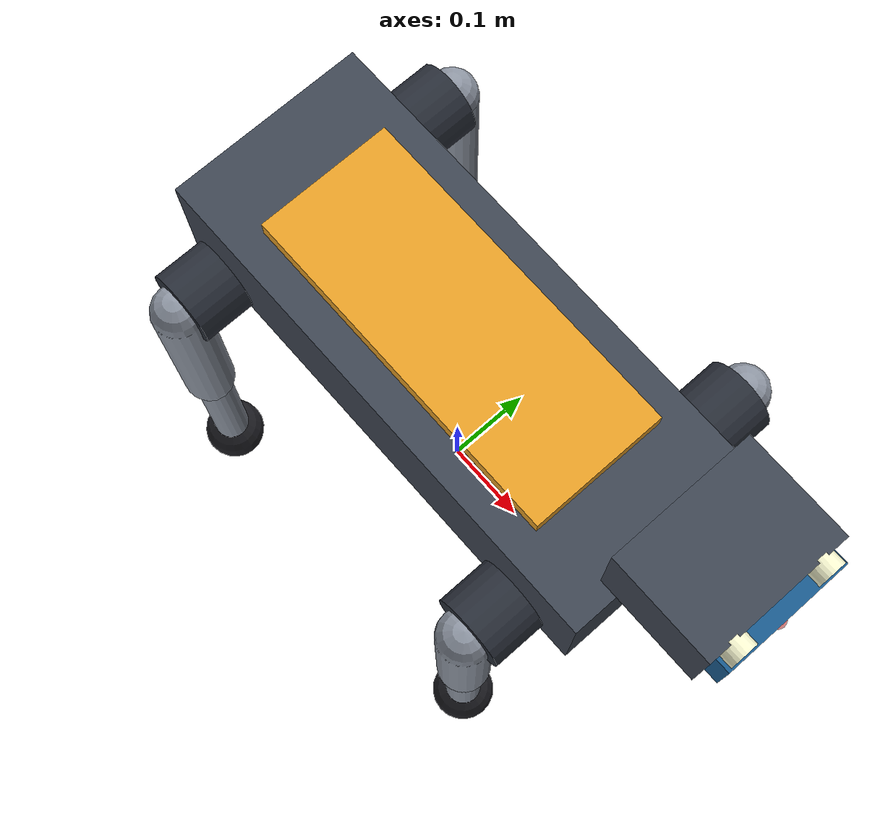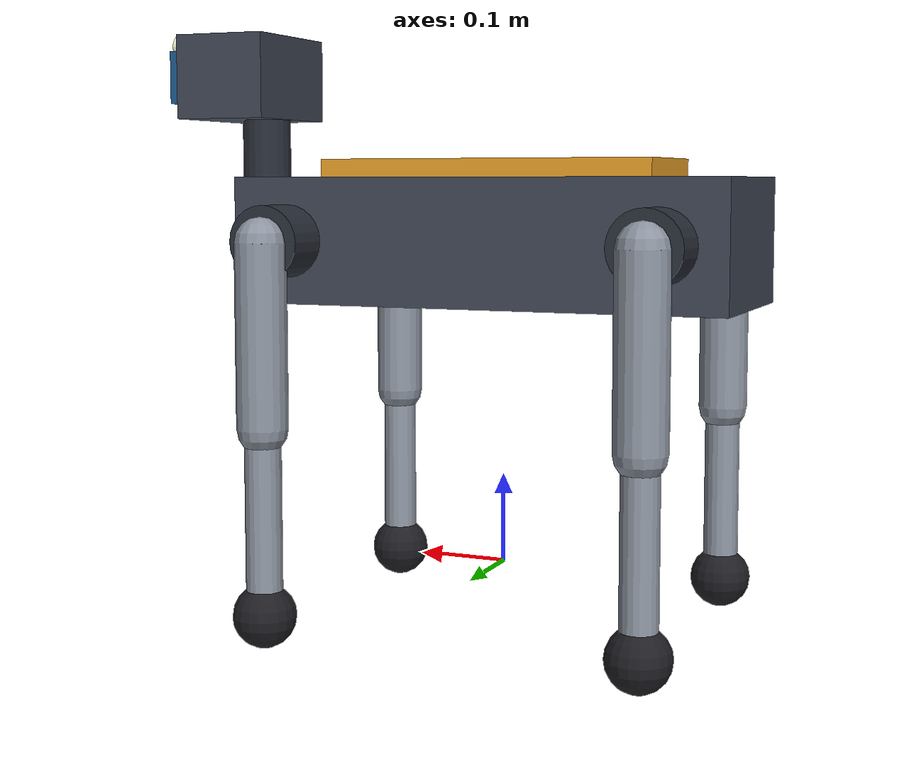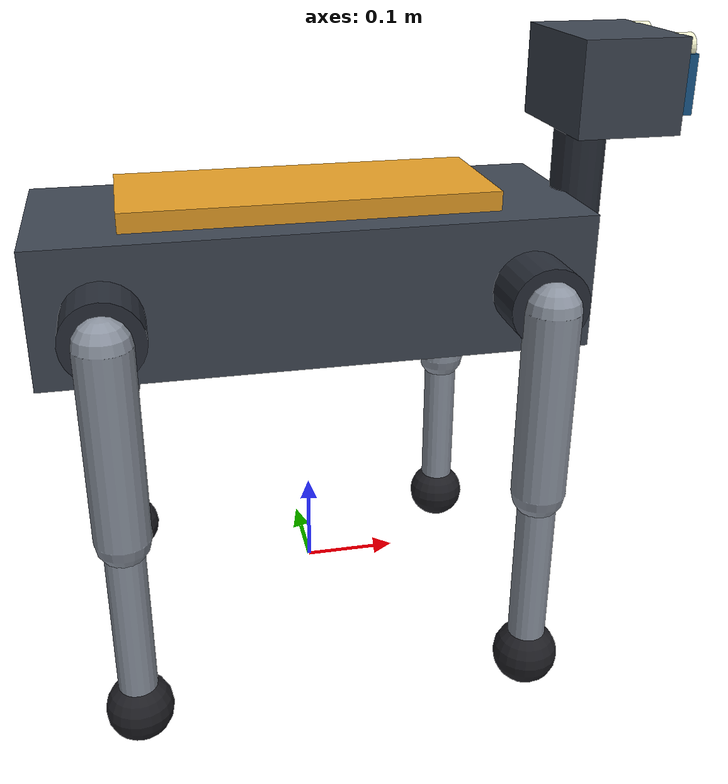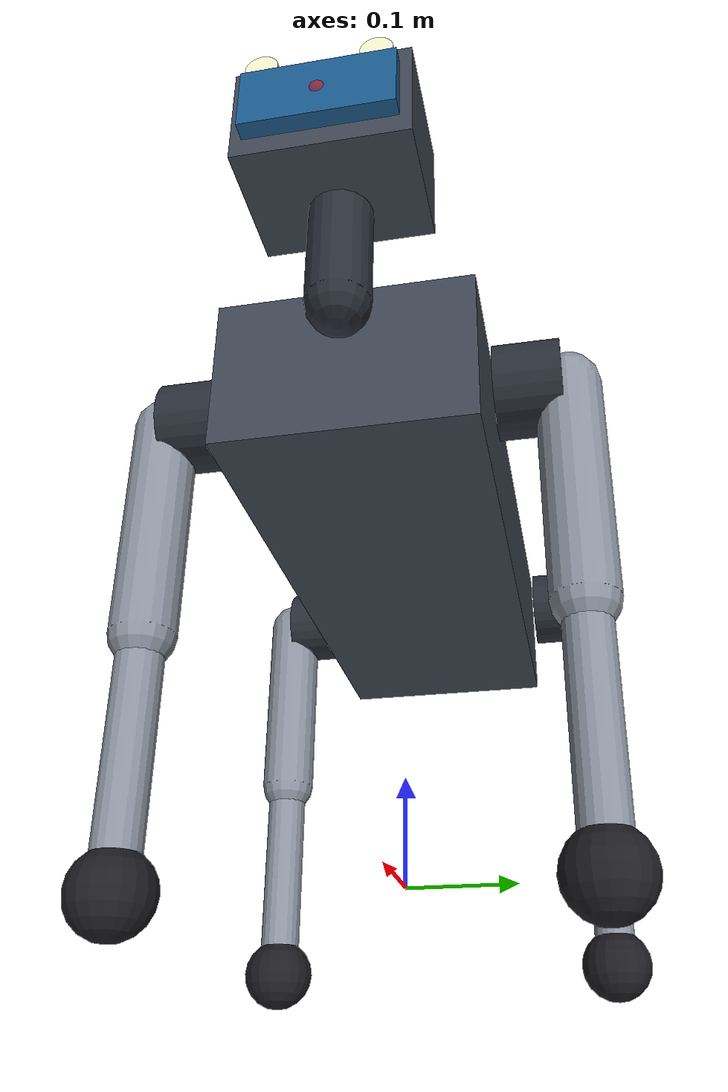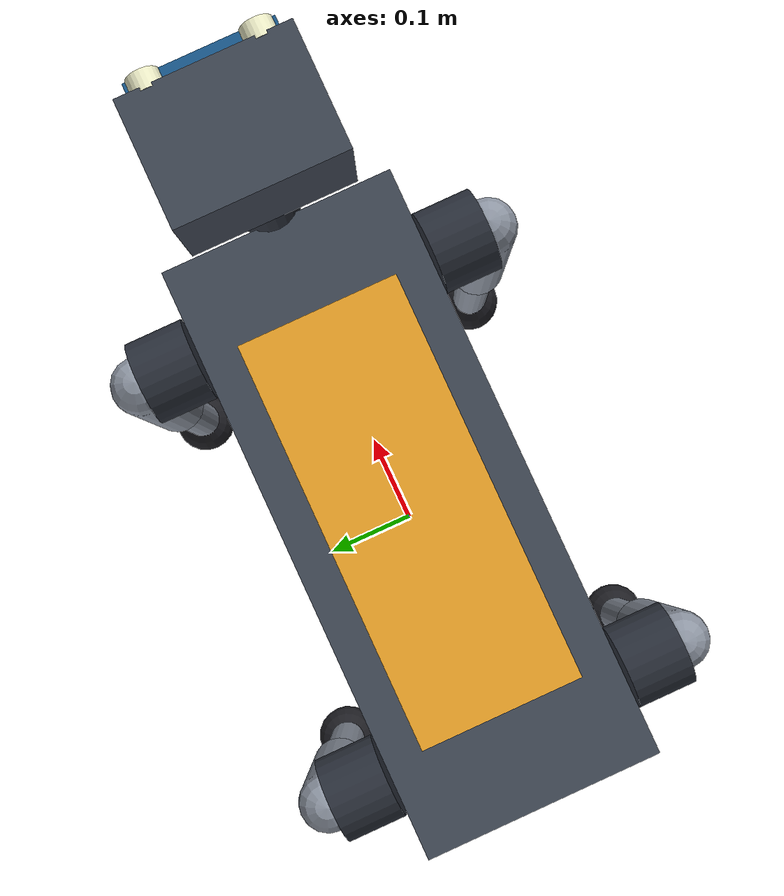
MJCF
<mujoco model="pyunto_q1">
  <compiler angle="radian" autolimits="true"/>

  <default>
    <default class="q1">
      <!-- No rgba in the default class: it would override every material below. -->
      <geom type="capsule" condim="3" friction="0.9 0.05 0.01" density="700" group="1"/>
      <joint type="hinge" damping="1.2" armature="0.01" limited="true"/>
      <position kp="120" dampratio="1" ctrllimited="true"/>

      <default class="q_leg">
        <joint damping="1.5" armature="0.015"/>
        <position kp="220" dampratio="1" forcerange="-90 90"/>
      </default>
      <default class="q_foot">
        <geom type="sphere" size="0.035" friction="1.8 0.15 0.02" condim="4"
              material="q_rubber"/>
      </default>
    </default>
  </default>

  <asset>
    <material name="q_shell"  rgba="0.24 0.27 0.32 1" specular="0.45" shininess="0.55"/>
    <material name="q_panel"  rgba="0.90 0.62 0.15 1" specular="0.40" shininess="0.45"/>
    <material name="q_limb"   rgba="0.55 0.58 0.63 1" specular="0.50" shininess="0.50"/>
    <material name="q_joint"  rgba="0.16 0.18 0.22 1" specular="0.35"/>
    <material name="q_rubber" rgba="0.12 0.12 0.14 1" specular="0.15"/>
    <material name="q_lens"   rgba="0.10 0.35 0.55 1" specular="0.90" shininess="0.95"/>
    <material name="q_light"  rgba="0.95 0.95 0.80 1" specular="0.80" shininess="0.90"/>
  </asset>

  <worldbody>
    <body name="trunk" pos="0 0 0.3646" childclass="q1">
      <freejoint name="root"/>
      <inertial pos="0 0 0" mass="11.0" diaginertia="0.16 0.42 0.46"/>
      <geom name="trunk_g" type="box" size="0.28 0.11 0.070" material="q_shell"/>
      <!-- A bright dorsal panel: high-visibility livery, and a colour cue from above. -->
      <geom name="trunk_panel" type="box" size="0.19 0.075 0.012" pos="0 0 0.078"
            material="q_panel"/>

      <!-- ===================== SENSOR MAST + HEAD ===================== -->
      <!--
        The mast puts the cameras at z~0.55 standing, high enough to see over low planting and
        to look along a corridor, low enough not to make the robot top-heavy.
      -->
      <body name="head" pos="0.30 0 0.10">
        <inertial pos="0 0 0.02" mass="0.9" diaginertia="0.004 0.004 0.003"/>
        <geom name="mast_g" type="capsule" fromto="0 0 -0.06 0 0 0.06" size="0.028"
              material="q_joint"/>
        <geom name="head_g" type="box" size="0.055 0.075 0.048" pos="0.02 0 0.085"
              material="q_shell"/>
        <geom name="visor_g" type="box" size="0.012 0.065 0.030" pos="0.078 0 0.085"
              material="q_lens"/>
        <!-- Work lamps, so the robot reads as a machine that patrols at night. -->
        <geom name="lamp_l" type="cylinder" size="0.014 0.008" pos="0.080 0.048 0.120"
              euler="0 1.5708 0" material="q_light"/>
        <geom name="lamp_r" type="cylinder" size="0.014 0.008" pos="0.080 -0.048 0.120"
              euler="0 1.5708 0" material="q_light"/>

        <camera name="head_cam" pos="0.085 0 0.085" xyaxes="0 -1 0 0 0 1" fovy="75"/>
        <site name="head_cam_site" pos="0.085 0 0.085" size="0.008" rgba="1 0 0 0.5"/>
        <!-- Side cameras for lateral clearance, same roles as on the humanoid. -->
        <camera name="look_left" pos="0.05 0.05 0.085" xyaxes="0.866 -0.5 0 0 0 1" fovy="90"/>
        <camera name="look_right" pos="0.05 -0.05 0.085" xyaxes="-0.866 -0.5 0 0 0 1" fovy="90"/>
        <camera name="ground_cam" pos="0.075 0 0.055" xyaxes="0 -1 0 0.766 0 0.643" fovy="80"/>
      </body>

      <!-- ---------- FRONT LEFT ---------- -->
      <body name="hip_fl" pos="0.21 0.115 0">
        <joint name="abd_fl" axis="1 0 0" range="-0.65 0.65" class="q_leg"/>
        <inertial pos="0 0.03 0" mass="0.7" diaginertia="0.001 0.001 0.001"/>
        <geom name="abd_fl_g" type="cylinder" size="0.040 0.028" pos="0 0.030 0"
              euler="1.5708 0 0" material="q_joint"/>
        <body name="thigh_fl" pos="0 0.062 0">
          <joint name="hip_fl" axis="0 1 0" range="-1.6 1.6" class="q_leg"/>
          <inertial pos="0 0 -0.10" mass="1.1" diaginertia="0.006 0.006 0.001"/>
          <geom name="thigh_fl_g" type="capsule" fromto="0 0 0 0 0 -0.200" size="0.028"
                material="q_limb"/>
          <body name="shin_fl" pos="0 0 -0.200">
            <!--
              Knee range is one-sided (0..2.2) so the joint can only bend one way. A knee that
              can invert finds inverted solutions, and the robot walks itself inside out.
            -->
            <joint name="knee_fl" axis="0 1 0" range="0 2.2" class="q_leg"/>
            <inertial pos="0 0 -0.09" mass="0.5" diaginertia="0.003 0.003 0.0005"/>
            <geom name="shin_fl_g" type="capsule" fromto="0 0 0 0 0 -0.195" size="0.020"
                  material="q_limb"/>
            <geom name="foot_fl" pos="0 0 -0.205" class="q_foot"/>
            <site name="foot_fl_site" pos="0 0 -0.205" size="0.012" rgba="0 1 0 0.4"/>
          </body>
        </body>
      </body>

      <!-- ---------- FRONT RIGHT ---------- -->
      <body name="hip_fr" pos="0.21 -0.115 0">
        <joint name="abd_fr" axis="1 0 0" range="-0.65 0.65" class="q_leg"/>
        <inertial pos="0 -0.03 0" mass="0.7" diaginertia="0.001 0.001 0.001"/>
        <geom name="abd_fr_g" type="cylinder" size="0.040 0.028" pos="0 -0.030 0"
              euler="1.5708 0 0" material="q_joint"/>
        <body name="thigh_fr" pos="0 -0.062 0">
          <joint name="hip_fr" axis="0 1 0" range="-1.6 1.6" class="q_leg"/>
          <inertial pos="0 0 -0.10" mass="1.1" diaginertia="0.006 0.006 0.001"/>
          <geom name="thigh_fr_g" type="capsule" fromto="0 0 0 0 0 -0.200" size="0.028"
                material="q_limb"/>
          <body name="shin_fr" pos="0 0 -0.200">
            <joint name="knee_fr" axis="0 1 0" range="0 2.2" class="q_leg"/>
            <inertial pos="0 0 -0.09" mass="0.5" diaginertia="0.003 0.003 0.0005"/>
            <geom name="shin_fr_g" type="capsule" fromto="0 0 0 0 0 -0.195" size="0.020"
                  material="q_limb"/>
            <geom name="foot_fr" pos="0 0 -0.205" class="q_foot"/>
            <site name="foot_fr_site" pos="0 0 -0.205" size="0.012" rgba="0 1 0 0.4"/>
          </body>
        </body>
      </body>

      <!-- ---------- HIND LEFT ---------- -->
      <body name="hip_hl" pos="-0.21 0.115 0">
        <joint name="abd_hl" axis="1 0 0" range="-0.65 0.65" class="q_leg"/>
        <inertial pos="0 0.03 0" mass="0.7" diaginertia="0.001 0.001 0.001"/>
        <geom name="abd_hl_g" type="cylinder" size="0.040 0.028" pos="0 0.030 0"
              euler="1.5708 0 0" material="q_joint"/>
        <body name="thigh_hl" pos="0 0.062 0">
          <joint name="hip_hl" axis="0 1 0" range="-1.6 1.6" class="q_leg"/>
          <inertial pos="0 0 -0.10" mass="1.1" diaginertia="0.006 0.006 0.001"/>
          <geom name="thigh_hl_g" type="capsule" fromto="0 0 0 0 0 -0.200" size="0.028"
                material="q_limb"/>
          <body name="shin_hl" pos="0 0 -0.200">
            <joint name="knee_hl" axis="0 1 0" range="0 2.2" class="q_leg"/>
            <inertial pos="0 0 -0.09" mass="0.5" diaginertia="0.003 0.003 0.0005"/>
            <geom name="shin_hl_g" type="capsule" fromto="0 0 0 0 0 -0.195" size="0.020"
                  material="q_limb"/>
            <geom name="foot_hl" pos="0 0 -0.205" class="q_foot"/>
            <site name="foot_hl_site" pos="0 0 -0.205" size="0.012" rgba="0 1 0 0.4"/>
          </body>
        </body>
      </body>

      <!-- ---------- HIND RIGHT ---------- -->
      <body name="hip_hr" pos="-0.21 -0.115 0">
        <joint name="abd_hr" axis="1 0 0" range="-0.65 0.65" class="q_leg"/>
        <inertial pos="0 -0.03 0" mass="0.7" diaginertia="0.001 0.001 0.001"/>
        <geom name="abd_hr_g" type="cylinder" size="0.040 0.028" pos="0 -0.030 0"
              euler="1.5708 0 0" material="q_joint"/>
        <body name="thigh_hr" pos="0 -0.062 0">
          <joint name="hip_hr" axis="0 1 0" range="-1.6 1.6" class="q_leg"/>
          <inertial pos="0 0 -0.10" mass="1.1" diaginertia="0.006 0.006 0.001"/>
          <geom name="thigh_hr_g" type="capsule" fromto="0 0 0 0 0 -0.200" size="0.028"
                material="q_limb"/>
          <body name="shin_hr" pos="0 0 -0.200">
            <joint name="knee_hr" axis="0 1 0" range="0 2.2" class="q_leg"/>
            <inertial pos="0 0 -0.09" mass="0.5" diaginertia="0.003 0.003 0.0005"/>
            <geom name="shin_hr_g" type="capsule" fromto="0 0 0 0 0 -0.195" size="0.020"
                  material="q_limb"/>
            <geom name="foot_hr" pos="0 0 -0.205" class="q_foot"/>
            <site name="foot_hr_site" pos="0 0 -0.205" size="0.012" rgba="0 1 0 0.4"/>
          </body>
        </body>
      </body>
    </body>
  </worldbody>

  <contact>
    <!-- Neighbouring links always touch; excluding them avoids constant contact churn. -->
    <exclude body1="trunk" body2="hip_fl"/>
    <exclude body1="trunk" body2="hip_fr"/>
    <exclude body1="trunk" body2="hip_hl"/>
    <exclude body1="trunk" body2="hip_hr"/>
    <exclude body1="trunk" body2="head"/>
    <exclude body1="hip_fl" body2="thigh_fl"/>
    <exclude body1="hip_fr" body2="thigh_fr"/>
    <exclude body1="hip_hl" body2="thigh_hl"/>
    <exclude body1="hip_hr" body2="thigh_hr"/>
  </contact>

  <actuator>
    <!-- 12 servos: abduction, hip and knee for each of the four legs. -->
    <position name="abd_fl" joint="abd_fl" ctrlrange="-0.65 0.65" class="q_leg"/>
    <position name="hip_fl" joint="hip_fl" ctrlrange="-1.6 1.6" class="q_leg"/>
    <position name="knee_fl" joint="knee_fl" ctrlrange="0 2.2" class="q_leg"/>
    <position name="abd_fr" joint="abd_fr" ctrlrange="-0.65 0.65" class="q_leg"/>
    <position name="hip_fr" joint="hip_fr" ctrlrange="-1.6 1.6" class="q_leg"/>
    <position name="knee_fr" joint="knee_fr" ctrlrange="0 2.2" class="q_leg"/>
    <position name="abd_hl" joint="abd_hl" ctrlrange="-0.65 0.65" class="q_leg"/>
    <position name="hip_hl" joint="hip_hl" ctrlrange="-1.6 1.6" class="q_leg"/>
    <position name="knee_hl" joint="knee_hl" ctrlrange="0 2.2" class="q_leg"/>
    <position name="abd_hr" joint="abd_hr" ctrlrange="-0.65 0.65" class="q_leg"/>
    <position name="hip_hr" joint="hip_hr" ctrlrange="-1.6 1.6" class="q_leg"/>
    <position name="knee_hr" joint="knee_hr" ctrlrange="0 2.2" class="q_leg"/>
  </actuator>

  <keyframe>
    <key name="stand"
         qpos="0 0 0.3646  1 0 0 0
               0 -0.62 1.24
               0 -0.62 1.24
               0 -0.62 1.24
               0 -0.62 1.24"/>
  </keyframe>
</mujoco>
